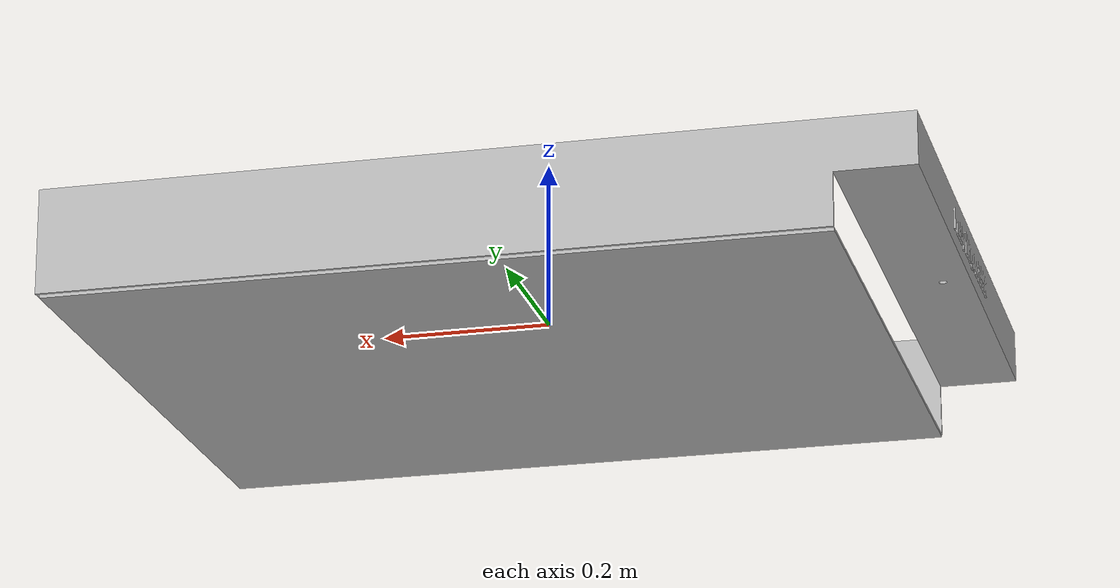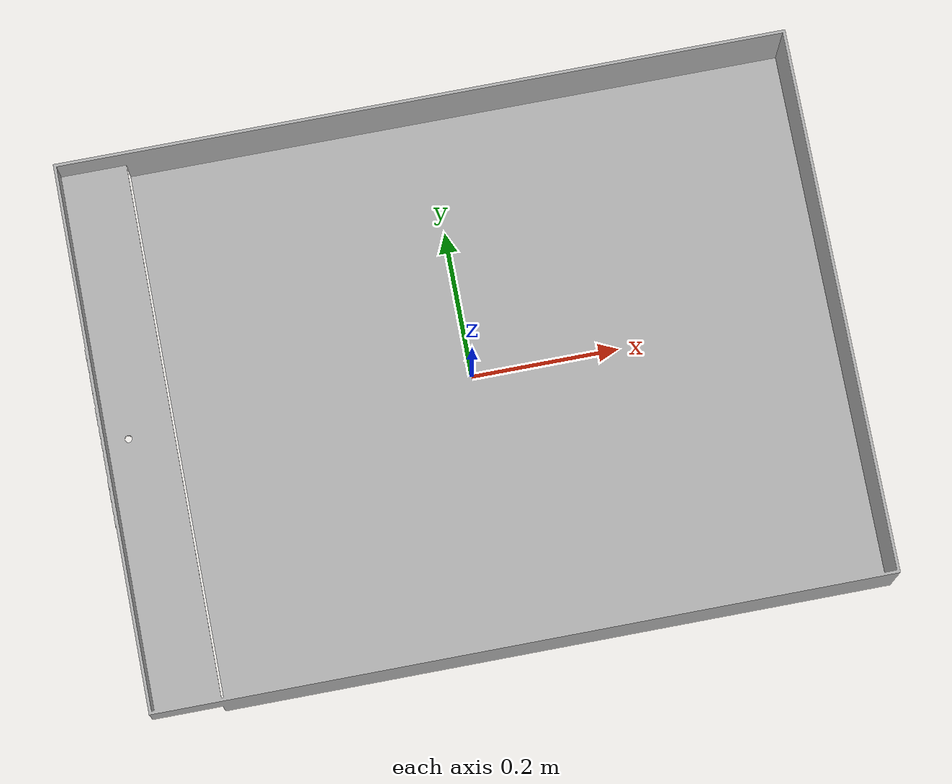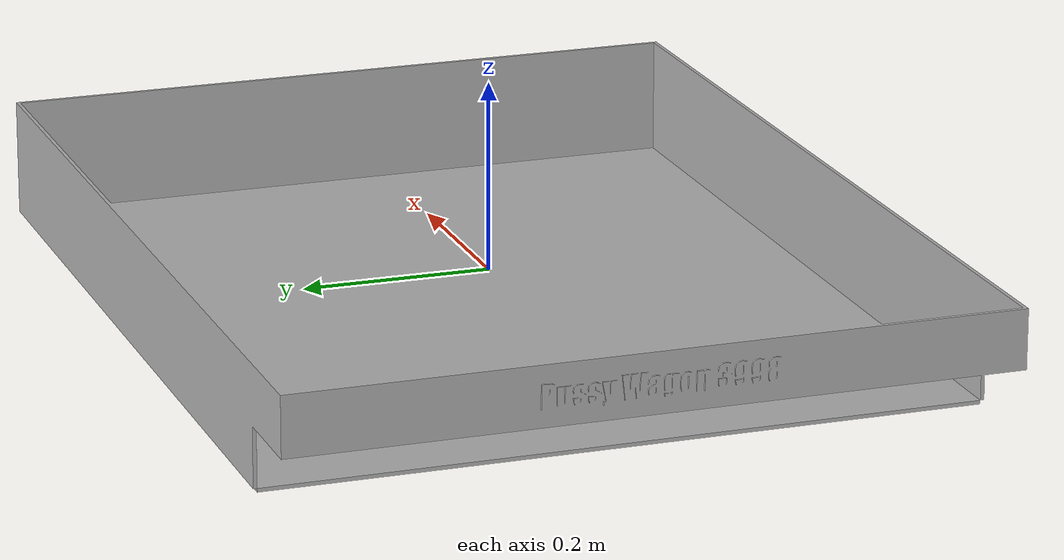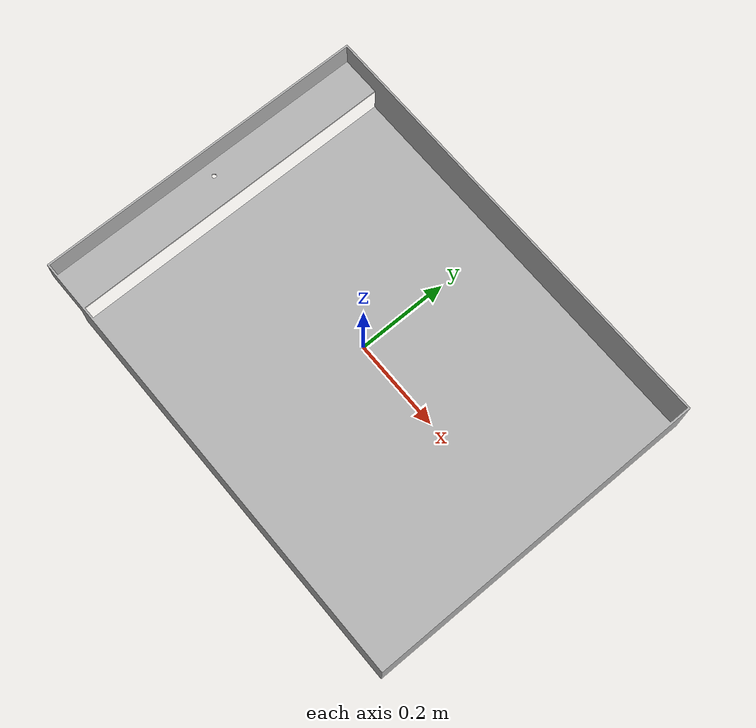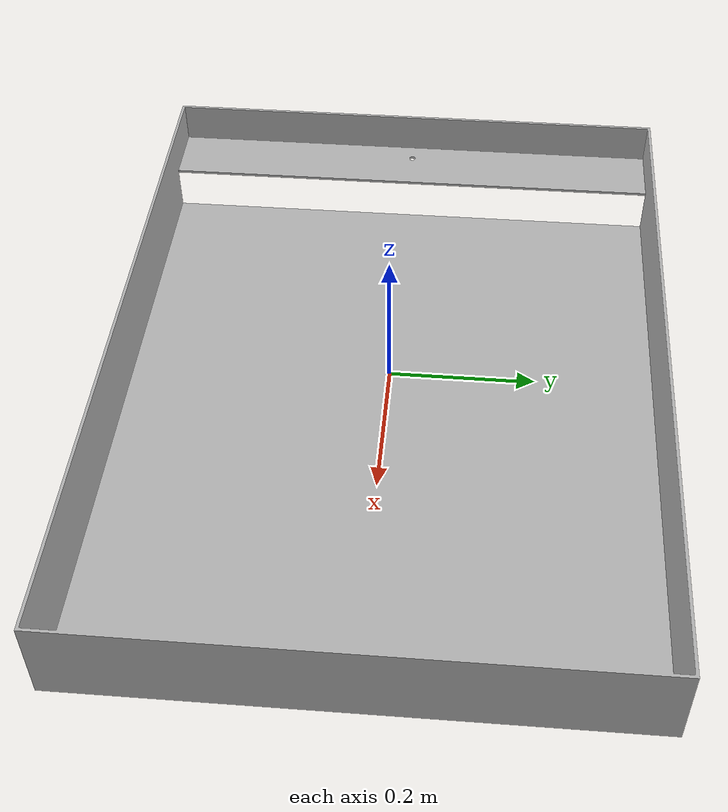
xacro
<?xml version="1.0" ?>
<robot name="Rover" xmlns:xacro="http://www.ros.org/wiki/xacro">

<xacro:include filename="$(find Rover_description)/urdf/materials.xacro" />
<xacro:include filename="$(find Rover_description)/urdf/Rover.trans" />
<xacro:include filename="$(find Rover_description)/urdf/Rover.gazebo" />
<link name="base_link">
  <inertial>
    <origin xyz="0.07278031630208001 0.0011969977062852603 0.052106355217569816" rpy="0 0 0"/>
    <mass value="1197.847820716573"/>
    <inertia ixx="65.82575" iyy="146.788951" izz="192.801127" ixy="0.525372" iyz="-0.32544" ixz="3.82244"/>
  </inertial>
  <visual>
    <origin xyz="0 0 0" rpy="0 0 0"/>
    <geometry>
      <mesh filename="package://Rover_description/meshes/base_link.stl" scale="0.001 0.001 0.001"/>
    </geometry>
    <material name="silver"/>
  </visual>
  <collision>
    <origin xyz="0 0 0" rpy="0 0 0"/>
    <geometry>
      <mesh filename="package://Rover_description/meshes/base_link.stl" scale="0.001 0.001 0.001"/>
    </geometry>
  </collision>
</link>

</robot>

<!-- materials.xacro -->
<robot name="Rover" xmlns:xacro="http://www.ros.org/wiki/xacro" >

<material name="silver">
  <color rgba="0.700 0.700 0.700 1.000"/>
</material>

</robot>

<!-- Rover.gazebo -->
<robot name="Rover" xmlns:xacro="http://www.ros.org/wiki/xacro" >

<xacro:property name="body_color" value="Gazebo/Silver" />

<gazebo>
  <plugin name="control" filename="libgazebo_ros_control.so"/>
</gazebo>
<gazebo reference="base_link">
  <material>${body_color}</material>
  <mu1>0.2</mu1>
  <mu2>0.2</mu2>
  <selfCollide>true</selfCollide>
  <gravity>true</gravity>
</gazebo>

<gazebo reference="Component13_1_1">
  <material>${body_color}</material>
  <mu1>0.2</mu1>
  <mu2>0.2</mu2>
  <selfCollide>true</selfCollide>
</gazebo>

<gazebo reference="Component7_1_1">
  <material>${body_color}</material>
  <mu1>0.2</mu1>
  <mu2>0.2</mu2>
  <selfCollide>true</selfCollide>
</gazebo>

<gazebo reference="Component7_1_1">
  <material>${body_color}</material>
  <mu1>0.2</mu1>
  <mu2>0.2</mu2>
  <selfCollide>true</selfCollide>
</gazebo>

<gazebo reference="Component2_1_1">
  <material>${body_color}</material>
  <mu1>0.2</mu1>
  <mu2>0.2</mu2>
  <selfCollide>true</selfCollide>
</gazebo>

<gazebo reference="Component2_1_1">
  <material>${body_color}</material>
  <mu1>0.2</mu1>
  <mu2>0.2</mu2>
  <selfCollide>true</selfCollide>
</gazebo>

<gazebo reference="Component12_1_1">
  <material>${body_color}</material>
  <mu1>0.2</mu1>
  <mu2>0.2</mu2>
  <selfCollide>true</selfCollide>
</gazebo>

<gazebo reference="Component8_1_1">
  <material>${body_color}</material>
  <mu1>0.2</mu1>
  <mu2>0.2</mu2>
  <selfCollide>true</selfCollide>
</gazebo>

<gazebo reference="Component3_1_1">
  <material>${body_color}</material>
  <mu1>0.2</mu1>
  <mu2>0.2</mu2>
  <selfCollide>true</selfCollide>
</gazebo>

<gazebo reference="Component4_1_1">
  <material>${body_color}</material>
  <mu1>0.2</mu1>
  <mu2>0.2</mu2>
  <selfCollide>true</selfCollide>
</gazebo>

<gazebo reference="Component5_1_1">
  <material>${body_color}</material>
  <mu1>0.2</mu1>
  <mu2>0.2</mu2>
  <selfCollide>true</selfCollide>
</gazebo>

<gazebo reference="Component6_1_1">
  <material>${body_color}</material>
  <mu1>0.2</mu1>
  <mu2>0.2</mu2>
  <selfCollide>true</selfCollide>
</gazebo>

</robot>
